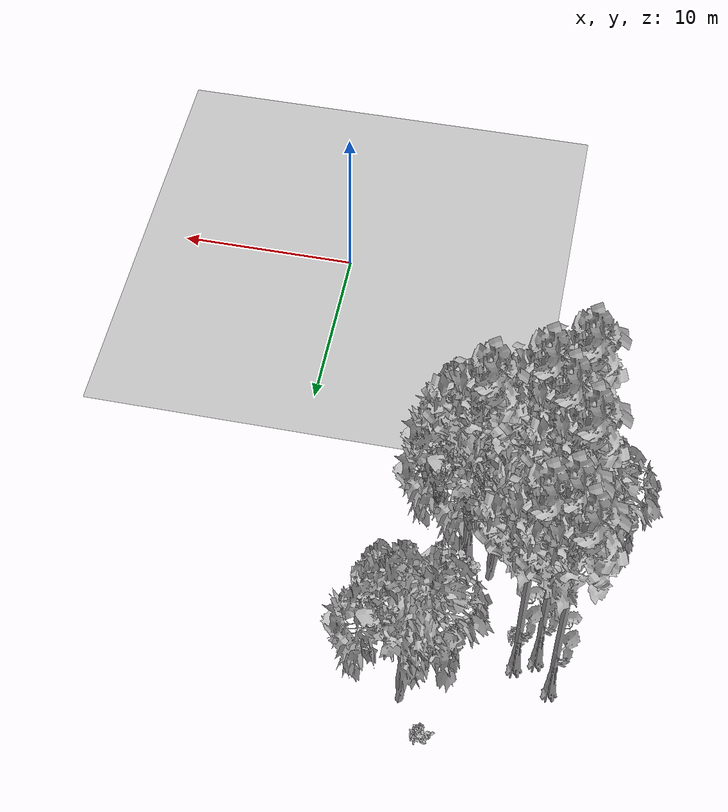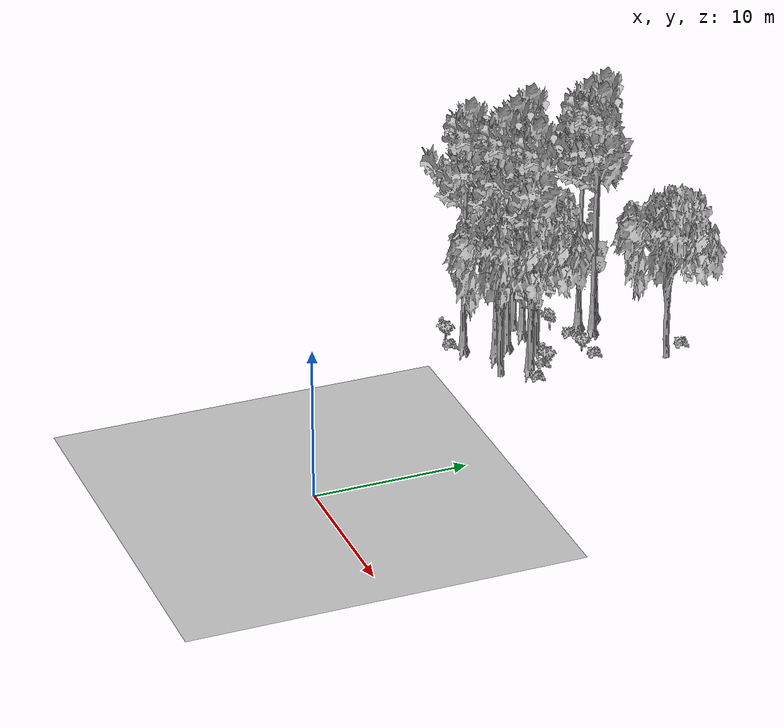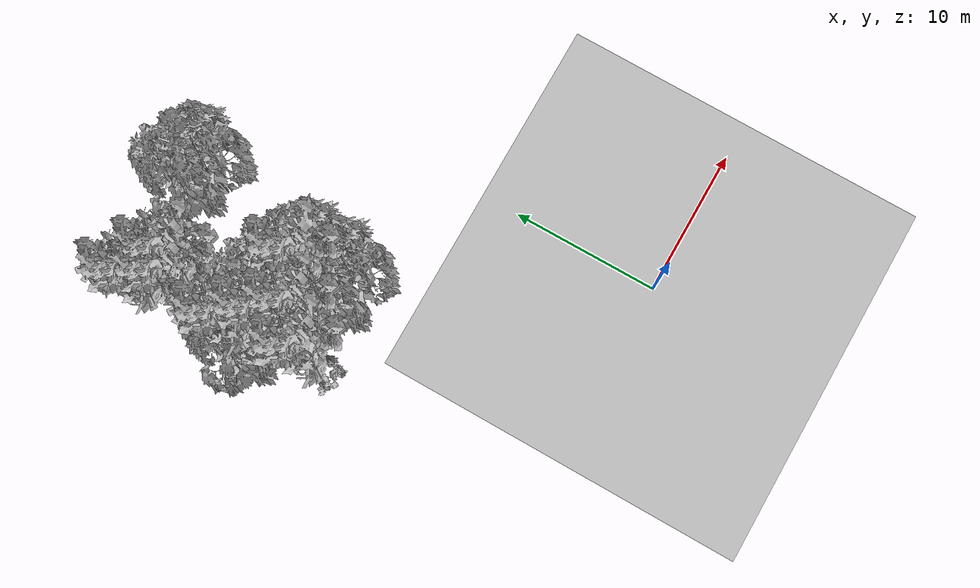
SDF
<sdf version="1.7">
 <world name="default">
  <model name="ground_plane">
   <static>1</static>
   <link name="link">
    <collision name="collision">
     <pose>-50 0 0 0 -0 0</pose>
     <geometry><plane><normal>0 0 1</normal><size>80 80</size></plane></geometry>
     <surface><contact><ode><min_depth>0.01</min_depth><max_vel>0</max_vel></ode></contact></surface>
    </collision>
    <visual name="grass">
     <cast_shadows>0</cast_shadows>
     <geometry>
      <mesh>
       <scale>0.46714285714285714 0.46714285714285714 0.1</scale>
       <uri>file://grass_plane/meshes/grass_plane.dae</uri>
      </mesh>
     </geometry>
    </visual>
   </link>
  </model>
  <model name="Tree 16">
   <static>1</static>
   <pose>-14.702496300402451 20.017734769742283 0 1.57079 -0 0</pose>
   <link name="link">
    <collision name="collision">
     <geometry><mesh><scale>3.5 5 3.5</scale><uri>model://tree_9/meshes/tree_9.obj</uri></mesh></geometry>
    </collision>
    <visual name="visual">
     <geometry><mesh><scale>3.5 5 3.5</scale><uri>model://tree_9/meshes/tree_9.obj</uri></mesh></geometry>
    </visual>
   </link>
  </model>
  <model name="Tree 67">
   <static>1</static>
   <pose>-8.133308946375998 27.291973512910175 0 1.57079 -0 0</pose>
   <link name="link">
    <collision name="collision">
     <geometry><mesh><scale>3.5 5 3.5</scale><uri>model://tree_2/meshes/tree_2.obj</uri></mesh></geometry>
    </collision>
    <visual name="visual">
     <geometry><mesh><scale>3.5 5 3.5</scale><uri>model://tree_2/meshes/tree_2.obj</uri></mesh></geometry>
    </visual>
   </link>
  </model>
  <model name="Tree 86">
   <static>1</static>
   <pose>-13.505741634167258 18.453809756827184 0 1.57079 -0 0</pose>
   <link name="link">
    <collision name="collision">
     <geometry><mesh><scale>3.5 5 3.5</scale><uri>model://tree_9/meshes/tree_9.obj</uri></mesh></geometry>
    </collision>
    <visual name="visual">
     <geometry><mesh><scale>3.5 5 3.5</scale><uri>model://tree_9/meshes/tree_9.obj</uri></mesh></geometry>
    </visual>
   </link>
  </model>
  <model name="Tree 111">
   <static>1</static>
   <pose>-15.181461842361124 25.402014178211672 0 1.57079 -0 0</pose>
   <link name="link">
    <collision name="collision">
     <geometry><mesh><scale>3.5 5 3.5</scale><uri>model://tree_9/meshes/tree_9.obj</uri></mesh></geometry>
    </collision>
    <visual name="visual">
     <geometry><mesh><scale>3.5 5 3.5</scale><uri>model://tree_9/meshes/tree_9.obj</uri></mesh></geometry>
    </visual>
   </link>
  </model>
  <model name="Tree 173">
   <static>1</static>
   <pose>-11.40834994853395 19.597909100833462 0 1.57079 -0 0</pose>
   <link name="link">
    <collision name="collision">
     <geometry><mesh><scale>3.5 5 3.5</scale><uri>model://tree_2/meshes/tree_2.obj</uri></mesh></geometry>
    </collision>
    <visual name="visual">
     <geometry><mesh><scale>3.5 5 3.5</scale><uri>model://tree_2/meshes/tree_2.obj</uri></mesh></geometry>
    </visual>
   </link>
  </model>
  <model name="Tree 218">
   <static>1</static>
   <pose>-9.805358999611023 18.539105663077315 0 1.57079 -0 0</pose>
   <link name="link">
    <collision name="collision">
     <geometry><mesh><scale>3.5 5 3.5</scale><uri>model://tree_2/meshes/tree_2.obj</uri></mesh></geometry>
    </collision>
    <visual name="visual">
     <geometry><mesh><scale>3.5 5 3.5</scale><uri>model://tree_2/meshes/tree_2.obj</uri></mesh></geometry>
    </visual>
   </link>
  </model>
  <model name="Tree 263">
   <static>1</static>
   <pose>-9.95055948314652 18.509168203389194 0 1.57079 -0 0</pose>
   <link name="link">
    <collision name="collision">
     <geometry><mesh><scale>3.5 5 3.5</scale><uri>model://tree_9/meshes/tree_9.obj</uri></mesh></geometry>
    </collision>
    <visual name="visual">
     <geometry><mesh><scale>3.5 5 3.5</scale><uri>model://tree_9/meshes/tree_9.obj</uri></mesh></geometry>
    </visual>
   </link>
  </model>
  <model name="Tree 269">
   <static>1</static>
   <pose>-13.300924547541879 24.422987242734308 0 1.57079 -0 0</pose>
   <link name="link">
    <collision name="collision">
     <geometry><mesh><scale>3.5 5 3.5</scale><uri>model://tree_9/meshes/tree_9.obj</uri></mesh></geometry>
    </collision>
    <visual name="visual">
     <geometry><mesh><scale>3.5 5 3.5</scale><uri>model://tree_9/meshes/tree_9.obj</uri></mesh></geometry>
    </visual>
   </link>
  </model>
  <model name="Tree 370">
   <static>1</static>
   <pose>-14.180386953391565 15.661106687016982 0 1.57079 -0 0</pose>
   <link name="link">
    <collision name="collision">
     <geometry><mesh><scale>3.5 5 3.5</scale><uri>model://tree_9/meshes/tree_9.obj</uri></mesh></geometry>
    </collision>
    <visual name="visual">
     <geometry><mesh><scale>3.5 5 3.5</scale><uri>model://tree_9/meshes/tree_9.obj</uri></mesh></geometry>
    </visual>
   </link>
  </model>
  <model name="Tree 384">
   <static>1</static>
   <pose>-14.326391212458368 23.86855557738825 0 1.57079 -0 0</pose>
   <link name="link">
    <collision name="collision">
     <geometry><mesh><scale>3.5 5 3.5</scale><uri>model://tree_9/meshes/tree_9.obj</uri></mesh></geometry>
    </collision>
    <visual name="visual">
     <geometry><mesh><scale>3.5 5 3.5</scale><uri>model://tree_9/meshes/tree_9.obj</uri></mesh></geometry>
    </visual>
   </link>
  </model>
  <model name="Tree 436">
   <static>1</static>
   <pose>-15.11467805218534 19.56249712910619 0 1.57079 -0 0</pose>
   <link name="link">
    <collision name="collision">
     <geometry><mesh><scale>3.5 5 3.5</scale><uri>model://tree_2/meshes/tree_2.obj</uri></mesh></geometry>
    </collision>
    <visual name="visual">
     <geometry><mesh><scale>3.5 5 3.5</scale><uri>model://tree_2/meshes/tree_2.obj</uri></mesh></geometry>
    </visual>
   </link>
  </model>
  <model name="Tree 586">
   <static>1</static>
   <pose>-12.394148442630168 17.155297779690848 0 1.57079 -0 0</pose>
   <link name="link">
    <collision name="collision">
     <geometry><mesh><scale>3.5 5 3.5</scale><uri>model://tree_9/meshes/tree_9.obj</uri></mesh></geometry>
    </collision>
    <visual name="visual">
     <geometry><mesh><scale>3.5 5 3.5</scale><uri>model://tree_9/meshes/tree_9.obj</uri></mesh></geometry>
    </visual>
   </link>
  </model>
  <model name="Tree 634">
   <static>1</static>
   <pose>-9.789398001481647 16.4075260902463 0 1.57079 -0 0</pose>
   <link name="link">
    <collision name="collision">
     <geometry><mesh><scale>3.5 5 3.5</scale><uri>model://tree_2/meshes/tree_2.obj</uri></mesh></geometry>
    </collision>
    <visual name="visual">
     <geometry><mesh><scale>3.5 5 3.5</scale><uri>model://tree_2/meshes/tree_2.obj</uri></mesh></geometry>
    </visual>
   </link>
  </model>
  <model name="Bush 40">
   <static>1</static>
   <pose>-10.213853315157113 23.158359156578484 0 1.57079 -0 0</pose>
   <link name="link">
    <collision name="collision">
     <geometry><mesh><scale>2 2 2</scale><uri>model://bush_2/meshes/bush_2.obj</uri></mesh></geometry>
     <surface><contact><collide_without_contact>false</collide_without_contact></contact></surface>
    </collision>
    <visual name="visual">
     <geometry><mesh><scale>2 2 2</scale><uri>model://bush_2/meshes/bush_2.obj</uri></mesh></geometry>
    </visual>
   </link>
  </model>
  <model name="Bush 144">
   <static>1</static>
   <pose>-14.218738461345776 21.801710496919668 0 1.57079 -0 0</pose>
   <link name="link">
    <collision name="collision">
     <geometry><mesh><scale>2 2 2</scale><uri>model://bush_5/meshes/bush_5.obj</uri></mesh></geometry>
     <surface><contact><collide_without_contact>false</collide_without_contact></contact></surface>
    </collision>
    <visual name="visual">
     <geometry><mesh><scale>2 2 2</scale><uri>model://bush_5/meshes/bush_5.obj</uri></mesh></geometry>
    </visual>
   </link>
  </model>
  <model name="Bush 175">
   <static>1</static>
   <pose>-13.27203248224841 22.704743886075825 0 1.57079 -0 0</pose>
   <link name="link">
    <collision name="collision">
     <geometry><mesh><scale>2 2 2</scale><uri>model://bush_2/meshes/bush_2.obj</uri></mesh></geometry>
     <surface><contact><collide_without_contact>false</collide_without_contact></contact></surface>
    </collision>
    <visual name="visual">
     <geometry><mesh><scale>2 2 2</scale><uri>model://bush_2/meshes/bush_2.obj</uri></mesh></geometry>
    </visual>
   </link>
  </model>
  <model name="Bush 358">
   <static>1</static>
   <pose>-14.666584610571132 14.875748280960053 0 1.57079 -0 0</pose>
   <link name="link">
    <collision name="collision">
     <geometry><mesh><scale>2 2 2</scale><uri>model://bush_2/meshes/bush_2.obj</uri></mesh></geometry>
     <surface><contact><collide_without_contact>false</collide_without_contact></contact></surface>
    </collision>
    <visual name="visual">
     <geometry><mesh><scale>2 2 2</scale><uri>model://bush_2/meshes/bush_2.obj</uri></mesh></geometry>
    </visual>
   </link>
  </model>
  <model name="Bush 368">
   <static>1</static>
   <pose>-8.689608677482163 18.50425282891871 0 1.57079 -0 0</pose>
   <link name="link">
    <collision name="collision">
     <geometry><mesh><scale>2 2 2</scale><uri>model://bush_2/meshes/bush_2.obj</uri></mesh></geometry>
     <surface><contact><collide_without_contact>false</collide_without_contact></contact></surface>
    </collision>
    <visual name="visual">
     <geometry><mesh><scale>2 2 2</scale><uri>model://bush_2/meshes/bush_2.obj</uri></mesh></geometry>
    </visual>
   </link>
  </model>
  <model name="Bush 374">
   <static>1</static>
   <pose>-10.155375923040939 19.506703729900494 0 1.57079 -0 0</pose>
   <link name="link">
    <collision name="collision">
     <geometry><mesh><scale>2 2 2</scale><uri>model://bush_2/meshes/bush_2.obj</uri></mesh></geometry>
     <surface><contact><collide_without_contact>false</collide_without_contact></contact></surface>
    </collision>
    <visual name="visual">
     <geometry><mesh><scale>2 2 2</scale><uri>model://bush_2/meshes/bush_2.obj</uri></mesh></geometry>
    </visual>
   </link>
  </model>
  <model name="Bush 525">
   <static>1</static>
   <pose>-9.948353867247306 19.78057797851215 0 1.57079 -0 0</pose>
   <link name="link">
    <collision name="collision">
     <geometry><mesh><scale>2 2 2</scale><uri>model://bush_0/meshes/bush_0.obj</uri></mesh></geometry>
     <surface><contact><collide_without_contact>false</collide_without_contact></contact></surface>
    </collision>
    <visual name="visual">
     <geometry><mesh><scale>2 2 2</scale><uri>model://bush_0/meshes/bush_0.obj</uri></mesh></geometry>
    </visual>
   </link>
  </model>
  <model name="Bush 545">
   <static>1</static>
   <pose>-15.564963912082366 15.016161087359919 0 1.57079 -0 0</pose>
   <link name="link">
    <collision name="collision">
     <geometry><mesh><scale>2 2 2</scale><uri>model://bush_0/meshes/bush_0.obj</uri></mesh></geometry>
     <surface><contact><collide_without_contact>false</collide_without_contact></contact></surface>
    </collision>
    <visual name="visual">
     <geometry><mesh><scale>2 2 2</scale><uri>model://bush_0/meshes/bush_0.obj</uri></mesh></geometry>
    </visual>
   </link>
  </model>
  <model name="Bush 586">
   <static>1</static>
   <pose>-9.38808870091595 28.96206534217218 0 1.57079 -0 0</pose>
   <link name="link">
    <collision name="collision">
     <geometry><mesh><scale>2 2 2</scale><uri>model://bush_2/meshes/bush_2.obj</uri></mesh></geometry>
     <surface><contact><collide_without_contact>false</collide_without_contact></contact></surface>
    </collision>
    <visual name="visual">
     <geometry><mesh><scale>2 2 2</scale><uri>model://bush_2/meshes/bush_2.obj</uri></mesh></geometry>
    </visual>
   </link>
  </model>
  <model name="Bush 601">
   <static>1</static>
   <pose>-10.811127340134266 22.58129307838678 0 1.57079 -0 0</pose>
   <link name="link">
    <collision name="collision">
     <geometry><mesh><scale>2 2 2</scale><uri>model://bush_0/meshes/bush_0.obj</uri></mesh></geometry>
     <surface><contact><collide_without_contact>false</collide_without_contact></contact></surface>
    </collision>
    <visual name="visual">
     <geometry><mesh><scale>2 2 2</scale><uri>model://bush_0/meshes/bush_0.obj</uri></mesh></geometry>
    </visual>
   </link>
  </model>
 </world>
</sdf>
